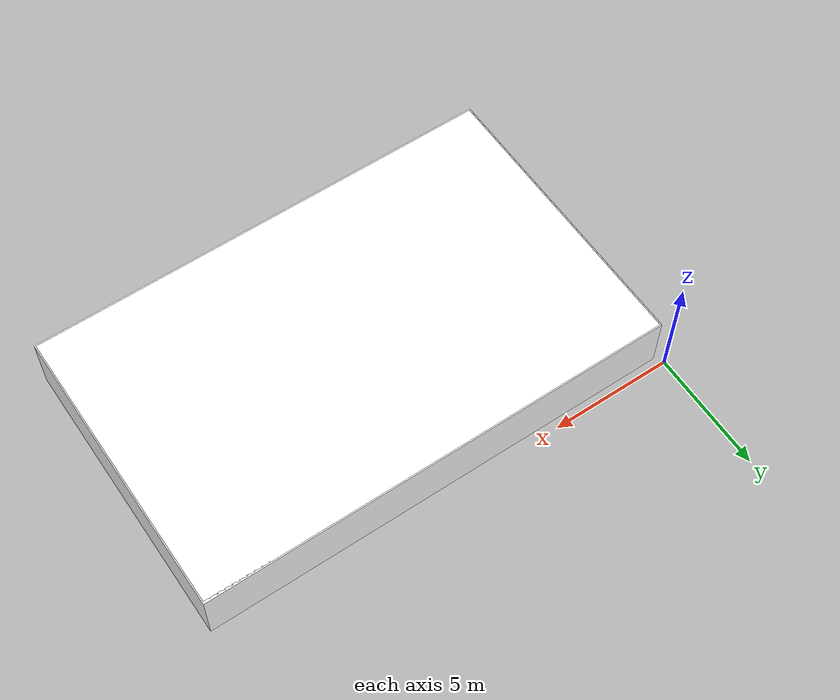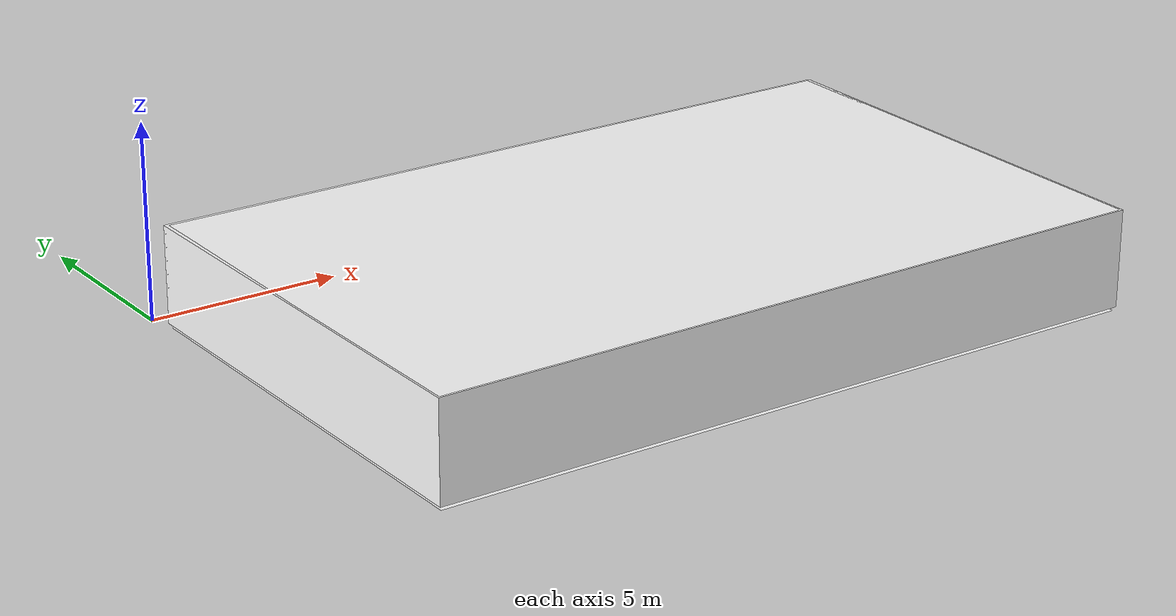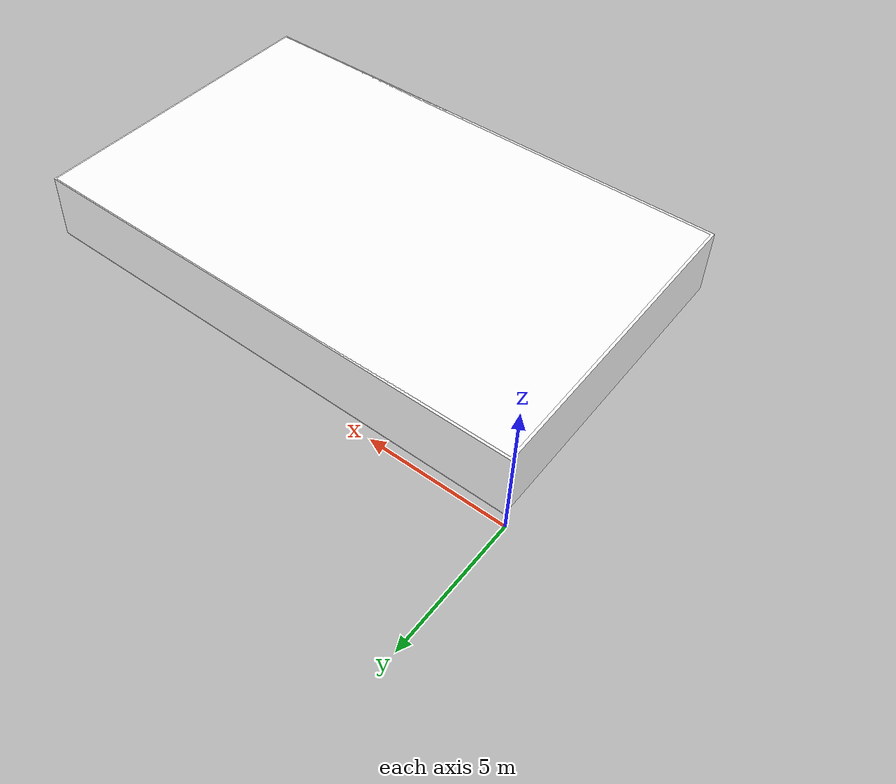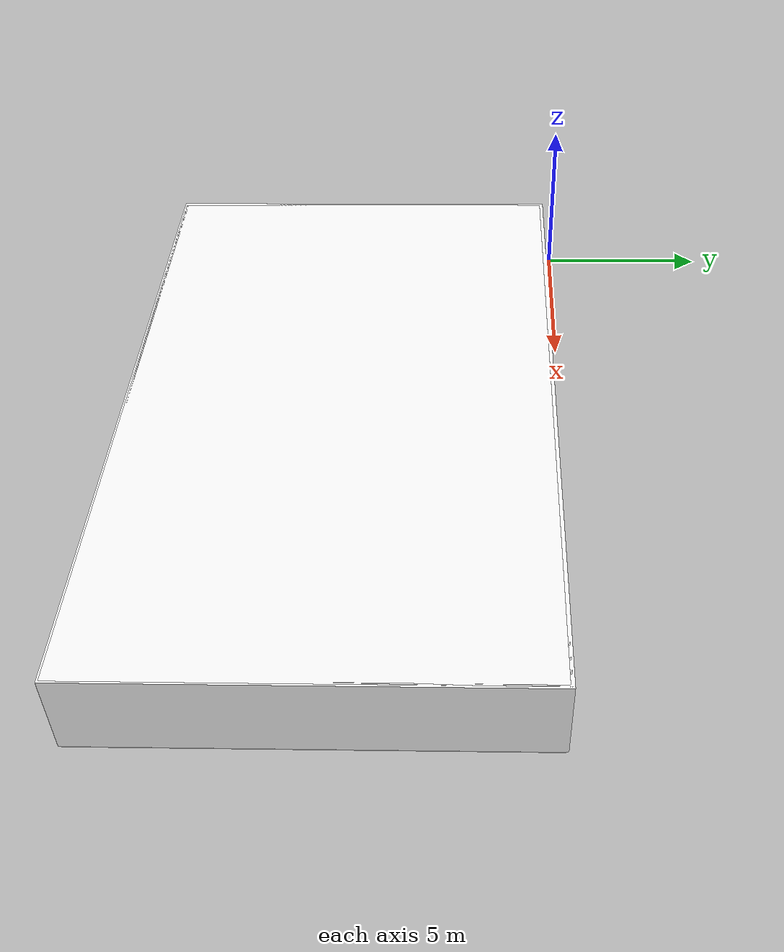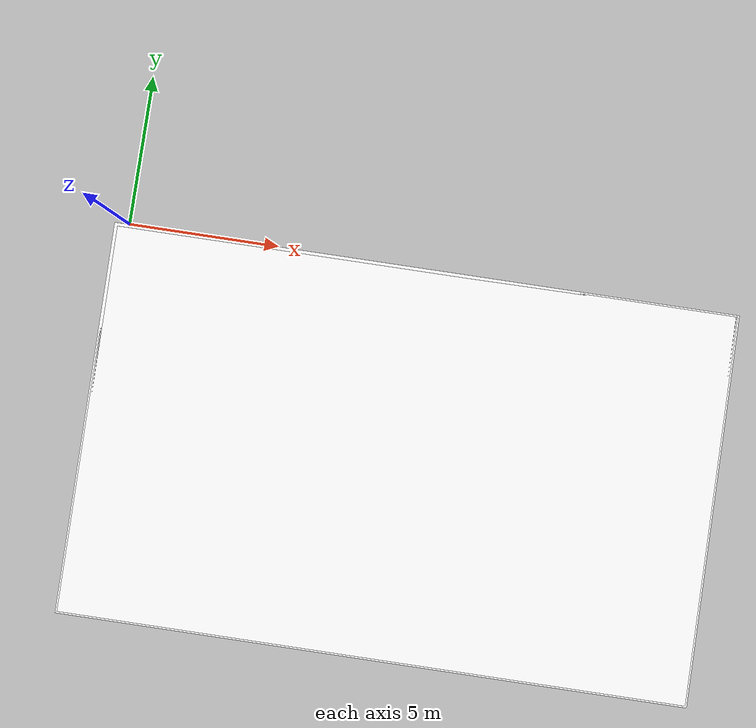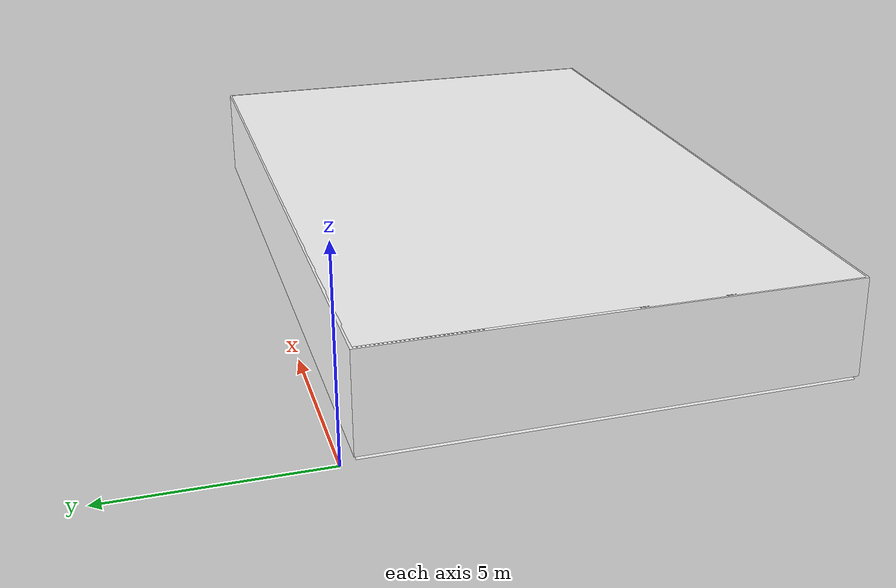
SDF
<sdf version="1.7">
 <world name="sim_world">
  <physics name="10ms" type="ode">
   <max_step_size>0.01</max_step_size>
   <real_time_factor>1.0</real_time_factor>
  </physics>
  <plugin filename="libgz-sim-physics-system.so" name="gz::sim::systems::Physics"/>
  <plugin filename="libgz-sim-user-commands-system.so" name="gz::sim::systems::UserCommands"/>
  <plugin filename="libgz-sim-scene-broadcaster-system.so" name="gz::sim::systems::SceneBroadcaster"/>
  <plugin filename="libdoor.so" name="door"/>
  <plugin filename="liblift.so" name="lift"/>
  <scene><ambient>1 1 1</ambient><background>0.8 0.8 0.8</background><grid>false</grid></scene>
  <light type="directional" name="sun">
   <pose>0 0 10 0 0 0</pose>
   <diffuse>1 1 1 1</diffuse>
   <specular>0.2 0.2 0.2 1</specular>
   <attenuation>
    <range>1000</range>
    <constant>0.09</constant>
    <linear>0.001</linear>
    <quadratic>0.001</quadratic>
   </attenuation>
   <direction>-0.5 0.1 -0.9</direction>
  </light>
  <include>
   <name>dispenser1</name>
   <uri>model://TeleportDispenser</uri>
   <pose>4.825234333312681 -10.083482805592974 0.0 0 0 1.5708</pose>
   <static>True</static>
  </include>
  <include>
   <name>ingestorTR02</name>
   <uri>model://TeleportIngestor</uri>
   <pose>16.859097802286573 -11.843194280880113 0.0 0 0 1.5708</pose>
   <static>True</static>
  </include>
  <include>
   <name>dispenser2</name>
   <uri>model://TeleportDispenser</uri>
   <pose>6.718368315128528 -10.12946784488295 0.0 0 0 1.5708</pose>
   <static>True</static>
  </include>
  <include>
   <name>dispenser3</name>
   <uri>model://TeleportDispenser</uri>
   <pose>8.676037098066912 -10.159119509383869 0.0 0 0 1.5708</pose>
   <static>True</static>
  </include>
  <include>
   <name>dispenser4</name>
   <uri>model://TeleportDispenser</uri>
   <pose>10.989645659721365 -10.12946784488295 0.0 0 0 1.5708</pose>
   <static>True</static>
  </include>
  <include>
   <name>dispenser5</name>
   <uri>model://TeleportDispenser</uri>
   <pose>13.436736630257055 -10.159119509383869 0.0 0 0 1.5708</pose>
   <static>True</static>
  </include>
  <include>
   <name>dispenserTR01</name>
   <uri>model://TeleportDispenser</uri>
   <pose>16.89232364048828 -1.1419784485767677 0.0 0 0 1.5708</pose>
   <static>True</static>
  </include>
  <include>
   <name>ingestor1</name>
   <uri>model://TeleportIngestor</uri>
   <pose>4.983156902024977 -2.5212500829642486 0.0 0 0 1.5708</pose>
   <static>True</static>
  </include>
  <include>
   <name>ingestor2</name>
   <uri>model://TeleportIngestor</uri>
   <pose>6.762855795605326 -2.5212500829642486 0.0 0 0 1.5708</pose>
   <static>True</static>
  </include>
  <include>
   <name>ingestor3</name>
   <uri>model://TeleportIngestor</uri>
   <pose>8.70570873001867 -2.565737563441047 0.0 0 0 1.5708</pose>
   <static>True</static>
  </include>
  <include>
   <name>ingestor4</name>
   <uri>model://TeleportIngestor</uri>
   <pose>10.989645659721365 -2.565737563441047 0.0 0 0 1.5708</pose>
   <static>True</static>
  </include>
  <include>
   <name>ingestor5</name>
   <uri>model://TeleportIngestor</uri>
   <pose>13.303254221375818 -2.565737563441047 0.0 0 0 1.5708</pose>
   <static>True</static>
  </include>
  <include>
   <name>coke1_dispensable</name>
   <uri>model://Coke</uri>
   <pose>4.822179313333798 -10.070244385684484 0.0 0 0 1.5708</pose>
   <static>False</static>
  </include>
  <include>
   <name>coke2_dispensable</name>
   <uri>model://Coke</uri>
   <pose>6.698840148204691 -10.105726545831374 0.0 0 0 1.5708</pose>
   <static>False</static>
  </include>
  <include>
   <name>coke3</name>
   <uri>model://Coke</uri>
   <pose>8.665194772259506 -10.142306915774594 0.0 0 0 1.5708</pose>
   <static>True</static>
  </include>
  <include>
   <name>coke4</name>
   <uri>model://Coke</uri>
   <pose>10.997373063197362 -10.114871638317178 0.0 0 0 1.5708</pose>
   <static>True</static>
  </include>
  <include>
   <name>coke5</name>
   <uri>model://Coke</uri>
   <pose>13.421002278993269 -10.142306915774594 0.0 0 0 1.5708</pose>
   <static>True</static>
  </include>
  <include>
   <name>cokeTR01_dispensable</name>
   <uri>model://Coke</uri>
   <pose>16.900250718472698 -1.1412795877972848 0.0 0 0 1.5708</pose>
   <static>False</static>
  </include>
  <include><name>warehouse_L1</name><uri>model://warehouse_L1</uri></include>
  <rmf_charger_waypoints name="charger_waypoints">
   <rmf_vertex name="tinyRobot1_charger" x="2.1088024183642746" y="-1.8592691851871892" level="L1"/>
   <rmf_vertex name="tinyRobot2_charger" x="18.947193974127313" y="-10.819323304035956" level="L1"/>
  </rmf_charger_waypoints>
 </world>
</sdf>

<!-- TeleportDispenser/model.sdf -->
<sdf version="1.6">
  <model name="TeleportDispenser">
    <pose>0.0 0.0 0.0 0.0 0.0 0.0</pose>
    <static>true</static>

    <link name="visual_link">
      <pose>0.0 0.0 0.05 0.0 0.0 0.0</pose>
      <visual name="visual">
        <geometry>
          <box>
            <size>0.1 0.1 0.1</size>
          </box>
        </geometry>
        <material>
          <ambient>128 192 210 0.1</ambient>
          <diffuse>128 192 210 0.1</diffuse>
        </material>
      </visual>
    </link>

    <plugin name="teleport_dispenser" filename="libteleport_dispenser.so">
    </plugin>

  </model>
</sdf>

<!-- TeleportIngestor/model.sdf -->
<sdf version="1.6">
  <model name="TeleportIngestor">
    <pose>0.0 0.0 0.0 0.0 0.0 0.0</pose>
    <static>true</static>

    <link name="visual_link">
      <pose>0.0 0.0 0.05 0.0 0.0 0.0</pose>
      <visual name="visual">
        <geometry>
          <box>
            <size>0.1 0.1 0.1</size>
          </box>
        </geometry>
        <material>
          <ambient>128 192 210 0.1</ambient>
          <diffuse>128 192 210 0.1</diffuse>
        </material>
      </visual>
    </link>

    <plugin name="teleport_ingestor" filename="libteleport_ingestor.so">
    </plugin>

  </model>
</sdf>

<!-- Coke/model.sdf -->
<sdf version="1.6">
  <model name='Coke'>
    <static>true</static>
    <link name="body">
      <pose>0 0 0 0 0 0</pose>

        <visual name="visual">
          <geometry>
            <mesh><uri>model://Coke/meshes/coke.obj</uri></mesh>
          </geometry>
        </visual>

        <collision name="collision">
          <geometry>
            <mesh><uri>model://Coke/meshes/coke.obj</uri></mesh>
          </geometry>
        </collision>

        <!-- TODO: Replace with accurate values of mass and inertia -->
        <inertial>
          <mass>1.0</mass>
          <inertia>
            <ixx>0.003366666666666667</ixx>
            <iyy>0.0008666666666666667</iyy>
            <izz>0.0041666666666666675</izz>
          </inertia>
        </inertial>

    </link>

  </model>
</sdf>

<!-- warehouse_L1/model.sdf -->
<sdf version="1.7">
  <model name="warehouse_L1">
    <static>true</static>
    <link name="floor_1">
      <visual name="visual">
        <geometry>
          <mesh>
            <uri>model://warehouse_L1/meshes/floor_1.obj</uri>
          </mesh>
        </geometry>
        <material>
          <diffuse>1.0 1.0 1.0</diffuse>
          <specular>0.1 0.1 0.1</specular>
          <pbr>
            <metal>
              <metalness>0.0</metalness>
              <albedo_map>model://warehouse_L1/meshes/blue_linoleum.png</albedo_map>
            </metal>
          </pbr>
          <script>
            <uri>model://warehouse_L1/meshes/</uri>
            <name>floor_1_Diffuse</name>
          </script>
        </material>
      </visual>
      <collision name="collision">
        <geometry>
          <mesh>
            <uri>model://warehouse_L1/meshes/floor_1.obj</uri>
          </mesh>
        </geometry>
        <surface>
          <contact>
            <collide_bitmask>0x01</collide_bitmask>
          </contact>
        </surface>
      </collision>
    </link>
    <link name="ceiling_1">
      <visual name="visual">
        <geometry>
          <mesh>
            <uri>model://warehouse_L1/meshes/ceiling_1.obj</uri>
          </mesh>
        </geometry>
        <material>
          <diffuse>1.0 1.0 1.0</diffuse>
          <specular>0.1 0.1 0.1</specular>
          <pbr>
            <metal>
              <metalness>0.0</metalness>
              <albedo_map>model://warehouse_L1/meshes/blue_linoleum.png</albedo_map>
            </metal>
          </pbr>
          <script>
            <uri>model://warehouse_L1/meshes/</uri>
            <name>ceiling_1_Diffuse</name>
          </script>
        </material>
      </visual>
      <collision name="collision">
        <geometry>
          <mesh>
            <uri>model://warehouse_L1/meshes/ceiling_1.obj</uri>
          </mesh>
        </geometry>
        <surface>
          <contact>
            <collide_bitmask>0x01</collide_bitmask>
          </contact>
        </surface>
      </collision>
    </link>
    <link name="wall_1">
      <visual name="wall_1">
        <geometry>
          <mesh>
            <uri>model://warehouse_L1/meshes/wall_1.obj</uri>
          </mesh>
        </geometry>
        <transparency>0.0</transparency>
        <material>
          <diffuse>1.0 1.0 1.0</diffuse>
          <specular>0.1 0.1 0.1</specular>
          <pbr>
            <metal>
              <metalness>0.0</metalness>
              <albedo_map>model://warehouse_L1/meshes/default.png</albedo_map>
            </metal>
          </pbr>
          <script>
            <uri>model://warehouse_L1/meshes/</uri>
            <name>wall_1_Diffuse</name>
          </script>
        </material>
      </visual>
      <collision name="collision">
        <geometry>
          <mesh>
            <uri>model://warehouse_L1/meshes/wall_1.obj</uri>
          </mesh>
        </geometry>
        <surface>
          <contact>
            <collide_bitmask>0x01</collide_bitmask>
          </contact>
        </surface>
      </collision>
      <pose>0.25955417300302425 -12.326608986270795 0 0 0 0</pose>
    </link>
  </model>
</sdf>
